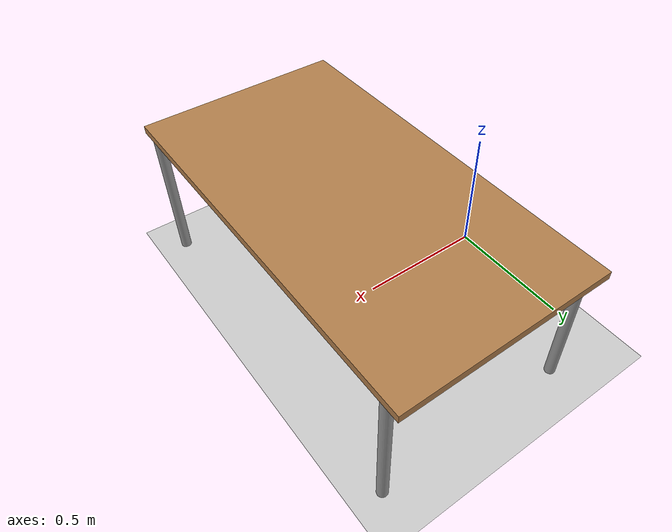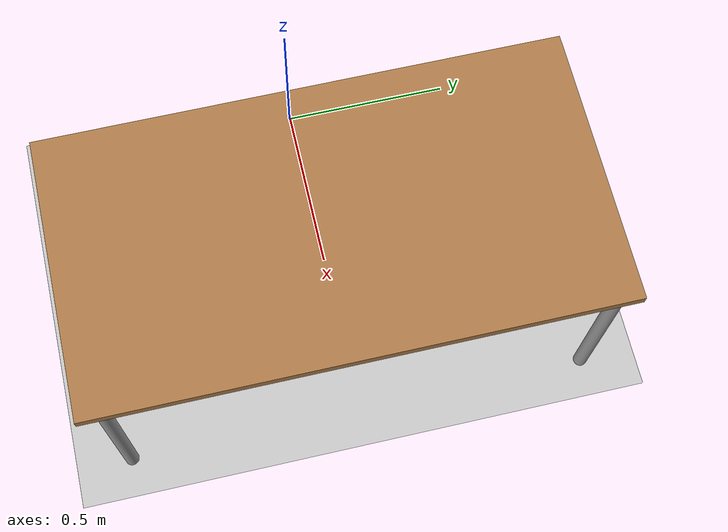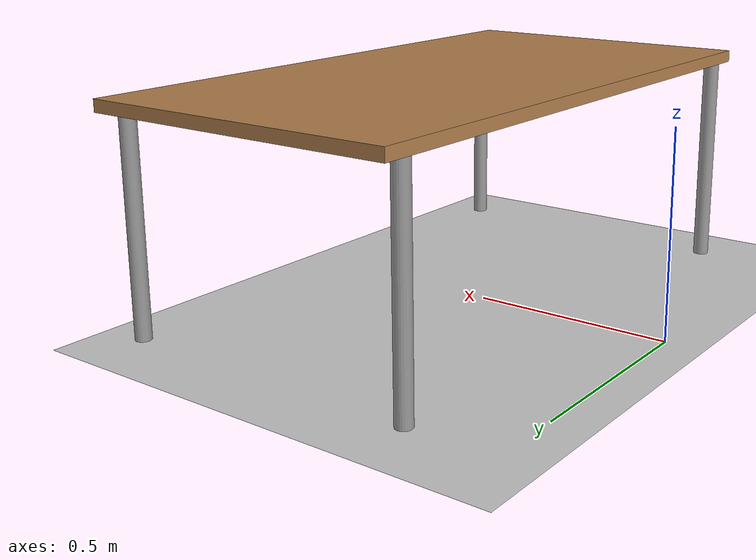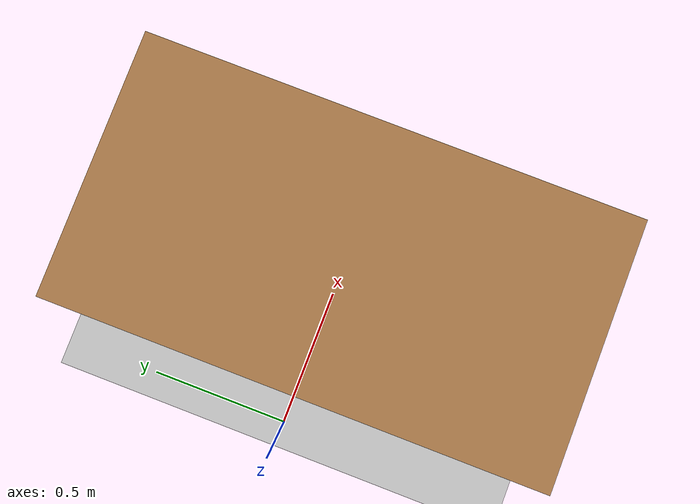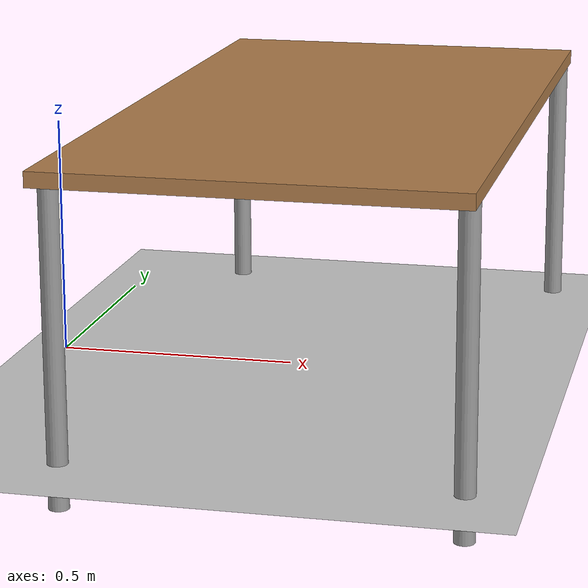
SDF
<sdf version="1.7">
 <world name="default">
  <physics default="1" name="custom_physics" type="dart">
   <real_time_update_rate>1000.0</real_time_update_rate>
   <max_contacts>100</max_contacts>
   <max_step_size>0.001</max_step_size>
   <real_time_factor>1.0</real_time_factor>
  </physics>
  <include><uri>model://sun</uri></include>
  <include><uri>model://ground_plane</uri></include>
  <include><uri>model://table</uri><pose>0.6 0 0 0 0 1.5708</pose></include>
 </world>
</sdf>

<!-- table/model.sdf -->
<sdf version="1.7">
	<model name="table">
		<static>true</static>
		<link name="table_root_link">
			<collision name="table_surface_collision">
				<pose>0 0 0.55 0 0 0</pose>
				<geometry>
					<box>
						<size>1.5 0.8 0.03</size>
					</box>
				</geometry>
				<surface>
					<friction>
						<ode>
						      <mu>0.1</mu>
						      <mu2>0.1</mu2>
						</ode>
					</friction>
				</surface>
			</collision>
			<visual name="table_surface_visual">
				<pose>0 0 0.55 0 0 0</pose>
				<geometry>
					  <box>
						<size>1.5 0.8 0.03</size>
					  </box>
				</geometry>
				<material>
					  <script>
						<uri>file://media/materials/scripts/gazebo.material</uri>
						<name>Gazebo/Wood</name>
					  </script>
				</material>
			</visual>
			<collision name="front_left_leg">
				<pose>0.68 0.38 0.235 0 0 0</pose>
					<geometry>
					  <cylinder>
						<radius>0.02</radius>
						<length>0.65</length>
					  </cylinder>
				</geometry>
			</collision>
			<visual name="front_left_leg">
				<pose>0.68 0.38 0.235 0 0 0</pose>
				<geometry>
					<cylinder>
						<radius>0.02</radius>
						<length>0.65</length>
					</cylinder>
				</geometry>
				<material>
					<script>
						<uri>file://media/materials/scripts/gazebo.material</uri>
						<name>Gazebo/Grey</name>
					</script>
				</material>
			</visual>
			<collision name="front_right_leg">
				<pose>0.68 -0.38 0.235 0 0 0</pose>
				<geometry>
					<cylinder>
						<radius>0.02</radius>
						<length>0.65</length>
					</cylinder>
				</geometry>
			</collision>
			<visual name="front_right_leg">
				<pose>0.68 -0.38 0.235 0 0 0</pose>
				<geometry>
					<cylinder>
						<radius>0.02</radius>
						<length>0.65</length>
					</cylinder>
				</geometry>
				<material>
					<script>
						<uri>file://media/materials/scripts/gazebo.material</uri>
						<name>Gazebo/Grey</name>
					</script>
				</material>
			</visual>
			<collision name="back_right_leg">
				<pose>-0.68 -0.38 0.235 0 0 0</pose>
				<geometry>
					<cylinder>
						<radius>0.02</radius>
						<length>0.65</length>
					</cylinder>
				</geometry>
			</collision>
			<visual name="back_right_leg">
				<pose>-0.68 -0.38 0.235 0 0 0</pose>
				<geometry>
					<cylinder>
						<radius>0.02</radius>
						<length>0.65</length>
					</cylinder>
				</geometry>
				<material>
					<script>
						<uri>file://media/materials/scripts/gazebo.material</uri>
						<name>Gazebo/Grey</name>
					</script>
				</material>
			</visual>
			<collision name="back_left_leg">
				<pose>-0.68 0.38 0.235 0 0 0</pose>
				<geometry>
					<cylinder>
						<radius>0.02</radius>
						<length>0.65</length>
					</cylinder>
				</geometry>
			</collision>
			<visual name="back_left_leg">
				<pose>-0.68 0.38 0.235 0 0 0</pose>
				<geometry>
					<cylinder>
						<radius>0.02</radius>
						<length>0.65</length>
					</cylinder>
				</geometry>
				<material>
					<script>
						<uri>file://media/materials/scripts/gazebo.material</uri>
						<name>Gazebo/Grey</name>
					</script>
				</material>
			</visual>
		</link>
	</model>
</sdf>
